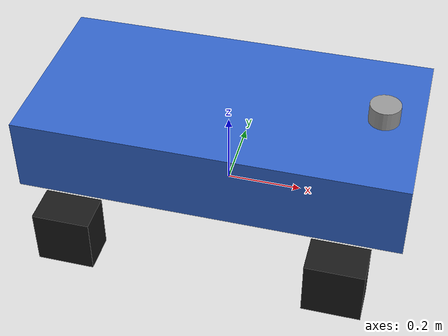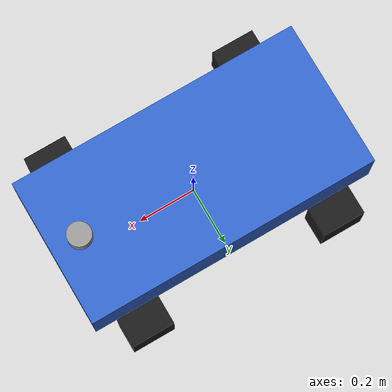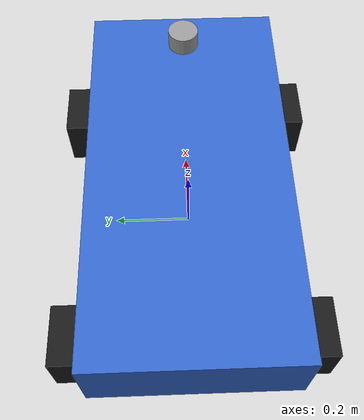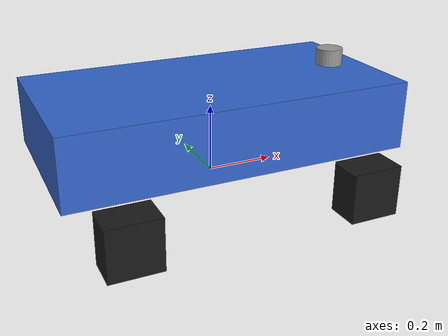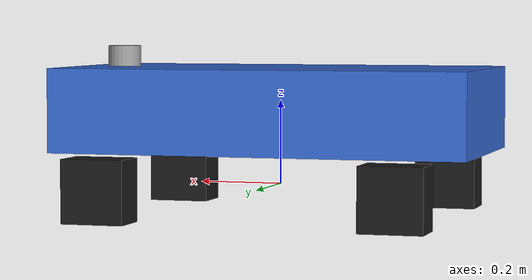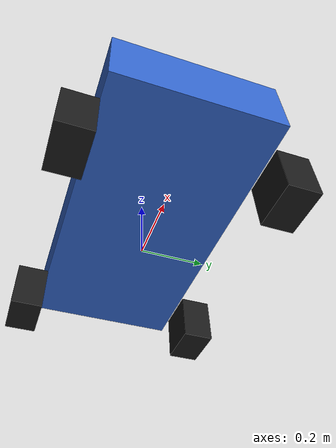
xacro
<?xml version="1.0"?>
<robot name="srm_buggy" xmlns:xacro="http://www.ros.org/wiki/xacro">

  <material name="black"><color rgba="0.1 0.1 0.1 1"/></material>
  <material name="blue"><color rgba="0.2 0.4 0.8 1"/></material>
  <material name="grey"><color rgba="0.6 0.6 0.6 1"/></material>

  <link name="base_link"/>

  <joint name="chassis_joint" type="fixed">
    <parent link="base_link"/>
    <child link="chassis"/>
    <origin xyz="0 0 0.18" rpy="0 0 0"/>
  </joint>

  <link name="chassis">
    <visual>
      <geometry><box size="1.0 0.5 0.2"/></geometry>
      <material name="blue"/>
    </visual>
    <collision>
      <geometry><box size="1.0 0.5 0.2"/></geometry>
    </collision>
    <inertial>
      <mass value="50.0"/>
      <inertia ixx="2.0" ixy="0" ixz="0" iyy="6.0" iyz="0" izz="7.0"/>
    </inertial>
  </link>

  <xacro:macro name="wheel" params="name x y">
    <joint name="${name}_joint" type="continuous">
      <parent link="base_link"/>
      <child link="${name}"/>
      <origin xyz="${x} ${y} 0" rpy="0 0 0"/>
      <axis xyz="0 1 0"/>
    </joint>
    <link name="${name}">
      <visual>
        <geometry><box size="0.15 0.1 0.15"/></geometry>
        <material name="black"/>
      </visual>
      <collision>
        <geometry><box size="0.15 0.1 0.15"/></geometry>
      </collision>
      <inertial>
        <mass value="2.0"/>
        <inertia ixx="0.01" ixy="0" ixz="0" iyy="0.01" iyz="0" izz="0.01"/>
      </inertial>
    </link>
  </xacro:macro>

  <xacro:wheel name="front_left_wheel"  x=" 0.35" y=" 0.30"/>
  <xacro:wheel name="front_right_wheel" x=" 0.35" y="-0.30"/>
  <xacro:wheel name="rear_left_wheel"   x="-0.35" y=" 0.30"/>
  <xacro:wheel name="rear_right_wheel"  x="-0.35" y="-0.30"/>

  <joint name="lidar_joint" type="fixed">
    <parent link="chassis"/>
    <child link="lidar_link"/>
    <origin xyz="0.4 0 0.12" rpy="0 0 0"/>
  </joint>

  <link name="lidar_link">
    <visual>
      <geometry><cylinder radius="0.04" length="0.06"/></geometry>
      <material name="grey"/>
    </visual>
    <collision>
      <geometry><cylinder radius="0.04" length="0.06"/></geometry>
    </collision>
    <inertial>
      <mass value="0.1"/>
      <inertia ixx="0.0001" ixy="0" ixz="0" iyy="0.0001" iyz="0" izz="0.0001"/>
    </inertial>
  </link>

  <joint name="imu_joint" type="fixed">
    <parent link="chassis"/>
    <child link="imu_link"/>
    <origin xyz="0 0 0.08" rpy="0 0 0"/>
  </joint>

  <link name="imu_link">
    <visual>
      <geometry><box size="0.04 0.04 0.02"/></geometry>
      <material name="grey"/>
    </visual>
    <inertial>
      <mass value="0.05"/>
      <inertia ixx="0.0001" ixy="0" ixz="0" iyy="0.0001" iyz="0" izz="0.0001"/>
    </inertial>
  </link>

  <gazebo>
    <plugin name="diff_drive" filename="libgazebo_ros_diff_drive.so">
      <left_joint>rear_left_wheel_joint</left_joint>
      <right_joint>rear_right_wheel_joint</right_joint>
      <wheel_separation>0.60</wheel_separation>
      <wheel_diameter>0.30</wheel_diameter>
      <max_wheel_torque>500</max_wheel_torque>
      <max_wheel_acceleration>2.0</max_wheel_acceleration>
      <command_topic>cmd_vel</command_topic>
      <publish_odom>true</publish_odom>
      <publish_odom_tf>true</publish_odom_tf>
      <publish_wheel_tf>true</publish_wheel_tf>
      <odometry_topic>odom</odometry_topic>
      <odometry_frame>odom</odometry_frame>
      <robot_base_frame>base_link</robot_base_frame>
    </plugin>
  </gazebo>

  <gazebo reference="lidar_link">
    <sensor name="lidar" type="ray">
      <always_on>true</always_on>
      <visualize>true</visualize>
      <update_rate>10</update_rate>
      <ray>
        <scan>
          <horizontal>
            <samples>360</samples>
            <resolution>1</resolution>
            <min_angle>-3.14159</min_angle>
            <max_angle>3.14159</max_angle>
          </horizontal>
        </scan>
        <range>
          <min>0.3</min>
          <max>30.0</max>
          <resolution>0.01</resolution>
        </range>
      </ray>
      <plugin name="lidar_plugin" filename="libgazebo_ros_ray_sensor.so">
        <ros><remapping>~/out:=scan</remapping></ros>
        <output_type>sensor_msgs/LaserScan</output_type>
        <frame_name>lidar_link</frame_name>
      </plugin>
    </sensor>
  </gazebo>

  <gazebo reference="imu_link">
    <sensor name="imu_sensor" type="imu">
      <always_on>true</always_on>
      <update_rate>50</update_rate>
      <plugin name="imu_plugin" filename="libgazebo_ros_imu_sensor.so">
        <ros><remapping>~/out:=imu/data</remapping></ros>
        <frame_name>imu_link</frame_name>
      </plugin>
    </sensor>
  </gazebo>

</robot>
